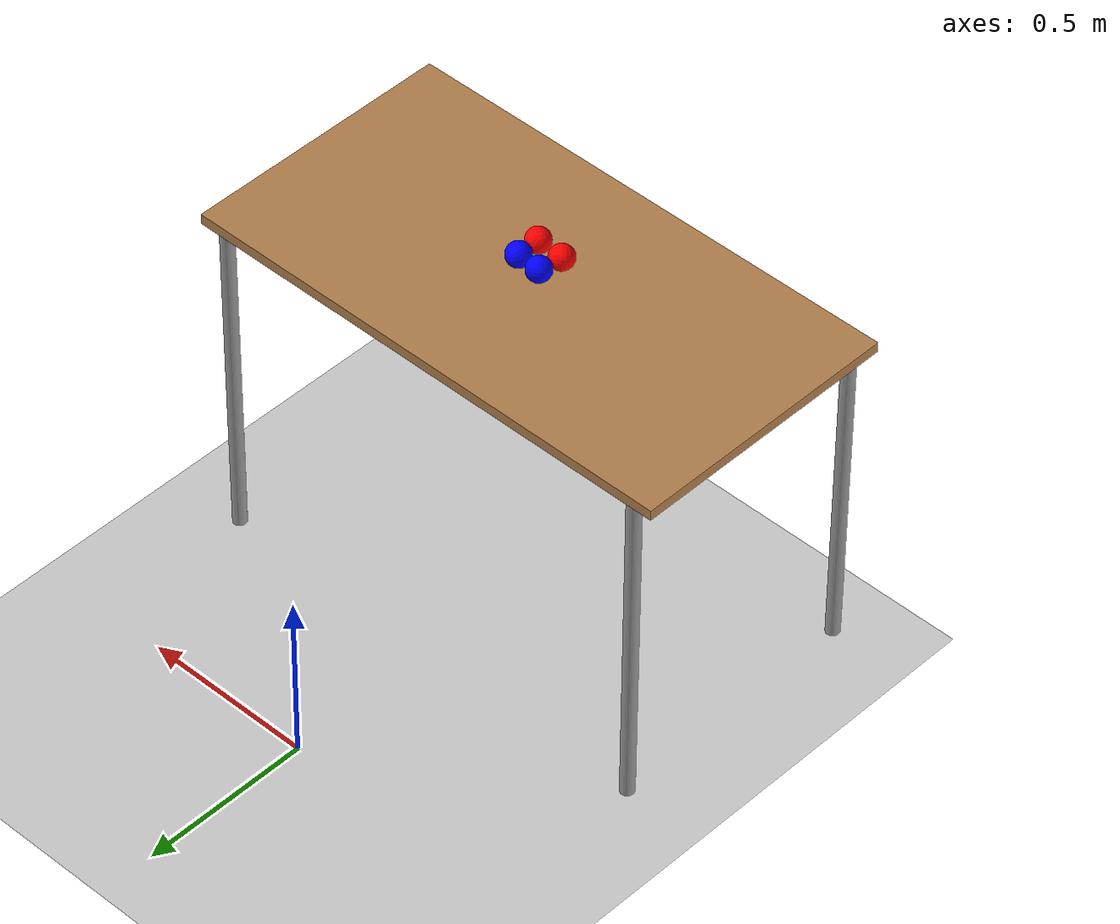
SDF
<sdf version="1.7">
 <world name="default">
  <model name="ground_plane">
   <static>1</static>
   <link name="link">
    <collision name="collision">
     <geometry><plane><normal>0 0 1</normal><size>100 100</size></plane></geometry>
     <surface><friction><ode><mu>100</mu><mu2>50</mu2></ode></friction></surface>
    </collision>
    <visual name="visual">
     <cast_shadows>0</cast_shadows>
     <geometry><plane><normal>0 0 1</normal><size>100 100</size></plane></geometry>
     <material>
      <script><uri>file://media/materials/scripts/gazebo.material</uri><name>Gazebo/Grey</name></script>
     </material>
    </visual>
   </link>
  </model>
  <light name="sun" type="directional">
   <pose>0 0 10 0 -0 0</pose>
   <diffuse>0.8 0.8 0.8 1</diffuse>
   <specular>0.2 0.2 0.2 1</specular>
   <attenuation>
    <range>1000</range>
    <constant>0.9</constant>
    <linear>0.01</linear>
    <quadratic>0.001</quadratic>
   </attenuation>
   <direction>-0.5 0.1 -0.9</direction>
   <spot><inner_angle>0</inner_angle><outer_angle>0</outer_angle><falloff>0</falloff></spot>
  </light>
  <model name="table">
   <static>1</static>
   <link name="link">
    <collision name="surface">
     <pose>0 0 1 0 -0 0</pose>
     <geometry><box><size>1.5 0.8 0.03</size></box></geometry>
     <surface><friction><ode><mu>0.6</mu><mu2>0.6</mu2></ode></friction></surface>
    </collision>
    <visual name="visual1">
     <pose>0 0 1 0 -0 0</pose>
     <geometry><box><size>1.5 0.8 0.03</size></box></geometry>
     <material>
      <script><uri>file://media/materials/scripts/gazebo.material</uri><name>Gazebo/Wood</name></script>
     </material>
    </visual>
    <collision name="front_left_leg">
     <pose>0.68 0.38 0.5 0 -0 0</pose>
     <geometry><cylinder><radius>0.02</radius><length>1</length></cylinder></geometry>
    </collision>
    <visual name="front_left_leg">
     <pose>0.68 0.38 0.5 0 -0 0</pose>
     <geometry><cylinder><radius>0.02</radius><length>1</length></cylinder></geometry>
     <material>
      <script><uri>file://media/materials/scripts/gazebo.material</uri><name>Gazebo/Grey</name></script>
     </material>
    </visual>
    <collision name="front_right_leg">
     <pose>0.68 -0.38 0.5 0 -0 0</pose>
     <geometry><cylinder><radius>0.02</radius><length>1</length></cylinder></geometry>
    </collision>
    <visual name="front_right_leg">
     <pose>0.68 -0.38 0.5 0 -0 0</pose>
     <geometry><cylinder><radius>0.02</radius><length>1</length></cylinder></geometry>
     <material>
      <script><uri>file://media/materials/scripts/gazebo.material</uri><name>Gazebo/Grey</name></script>
     </material>
    </visual>
    <collision name="back_right_leg">
     <pose>-0.68 -0.38 0.5 0 -0 0</pose>
     <geometry><cylinder><radius>0.02</radius><length>1</length></cylinder></geometry>
    </collision>
    <visual name="back_right_leg">
     <pose>-0.68 -0.38 0.5 0 -0 0</pose>
     <geometry><cylinder><radius>0.02</radius><length>1</length></cylinder></geometry>
     <material>
      <script><uri>file://media/materials/scripts/gazebo.material</uri><name>Gazebo/Grey</name></script>
     </material>
    </visual>
    <collision name="back_left_leg">
     <pose>-0.68 0.38 0.5 0 -0 0</pose>
     <geometry><cylinder><radius>0.02</radius><length>1</length></cylinder></geometry>
    </collision>
    <visual name="back_left_leg">
     <pose>-0.68 0.38 0.5 0 -0 0</pose>
     <geometry><cylinder><radius>0.02</radius><length>1</length></cylinder></geometry>
     <material>
      <script><uri>file://media/materials/scripts/gazebo.material</uri><name>Gazebo/Grey</name></script>
     </material>
    </visual>
   </link>
   <pose>0 -0.84 0 0 -0 0</pose>
  </model>
  <model name="red_ball_1">
   <pose>0.051929 -0.904895 1.06342 -1.75347 0.745627 -2.09071</pose>
   <static>0</static>
   <link name="link">
    <inertial>
     <mass>0.1</mass>
     <inertia><ixx>4.9e-05</ixx><iyy>4.9e-05</iyy><izz>4.9e-05</izz><ixy>0</ixy><ixz>0</ixz><iyz>0</iyz></inertia>
    </inertial>
    <collision name="collision"><geometry><sphere><radius>0.035</radius></sphere></geometry></collision>
    <visual name="visual">
     <geometry><sphere><radius>0.035</radius></sphere></geometry>
     <material><ambient>1 0 0 1</ambient><diffuse>1 0 0 1</diffuse></material>
    </visual>
   </link>
  </model>
  <model name="red_ball_2">
   <pose>-0.030894 -0.900456 1.06187 1.60845 -0.142353 -0.856225</pose>
   <static>0</static>
   <link name="link">
    <inertial>
     <mass>0.1</mass>
     <inertia><ixx>4.9e-05</ixx><iyy>4.9e-05</iyy><izz>4.9e-05</izz><ixy>0</ixy><ixz>0</ixz><iyz>0</iyz></inertia>
    </inertial>
    <collision name="collision"><geometry><sphere><radius>0.035</radius></sphere></geometry></collision>
    <visual name="visual">
     <geometry><sphere><radius>0.035</radius></sphere></geometry>
     <material><ambient>1 0 0 1</ambient><diffuse>1 0 0 1</diffuse></material>
    </visual>
   </link>
  </model>
  <model name="blue_ball_1">
   <pose>0.050835 -0.834912 1.06244 1.26465 0.381128 -0.515882</pose>
   <static>0</static>
   <link name="link">
    <inertial>
     <mass>0.1</mass>
     <inertia><ixx>4.9e-05</ixx><iyy>4.9e-05</iyy><izz>4.9e-05</izz><ixy>0</ixy><ixz>0</ixz><iyz>0</iyz></inertia>
    </inertial>
    <collision name="collision"><geometry><sphere><radius>0.035</radius></sphere></geometry></collision>
    <visual name="visual">
     <geometry><sphere><radius>0.035</radius></sphere></geometry>
     <material><ambient>0 0 1 1</ambient><diffuse>0 0 1 1</diffuse></material>
    </visual>
   </link>
  </model>
  <model name="blue_ball_2">
   <pose>-0.020616 -0.831214 1.06124 -0.430629 -0.029041 -2.51778</pose>
   <static>0</static>
   <link name="link">
    <inertial>
     <mass>0.1</mass>
     <inertia><ixx>4.9e-05</ixx><iyy>4.9e-05</iyy><izz>4.9e-05</izz><ixy>0</ixy><ixz>0</ixz><iyz>0</iyz></inertia>
    </inertial>
    <collision name="collision"><geometry><sphere><radius>0.035</radius></sphere></geometry></collision>
    <visual name="visual">
     <geometry><sphere><radius>0.035</radius></sphere></geometry>
     <material><ambient>0 0 1 1</ambient><diffuse>0 0 1 1</diffuse></material>
    </visual>
   </link>
  </model>
  <gravity>0 0 -9.8</gravity>
  <magnetic_field>6e-06 2.3e-05 -4.2e-05</magnetic_field>
  <atmosphere type="adiabatic"/>
  <physics type="ode">
   <max_step_size>0.001</max_step_size>
   <real_time_factor>1</real_time_factor>
   <real_time_update_rate>1000</real_time_update_rate>
  </physics>
  <scene><ambient>0.4 0.4 0.4 1</ambient><background>0.7 0.7 0.7 1</background><shadows>1</shadows></scene>
  <audio><device>default</device></audio>
  <spherical_coordinates>
   <surface_model>EARTH_WGS84</surface_model>
   <latitude_deg>0</latitude_deg>
   <longitude_deg>0</longitude_deg>
   <elevation>0</elevation>
   <heading_deg>0</heading_deg>
  </spherical_coordinates>
 </world>
</sdf>
